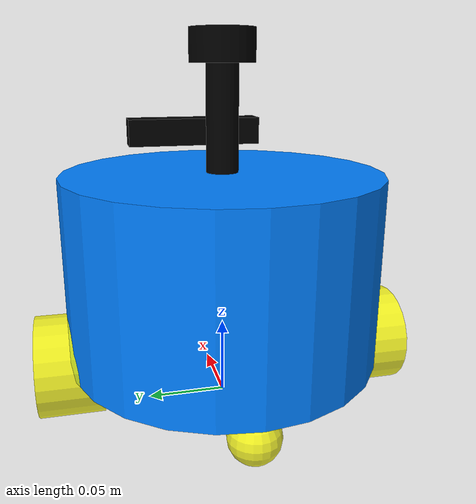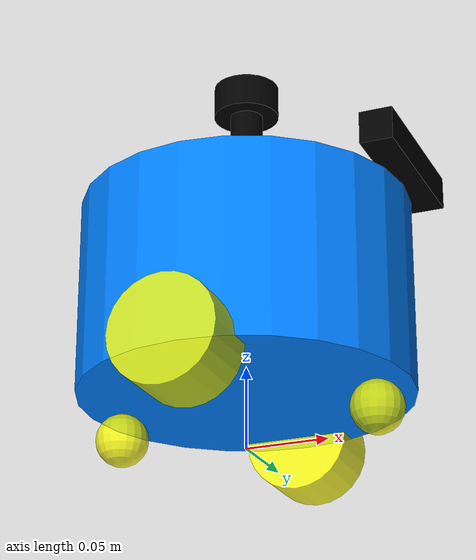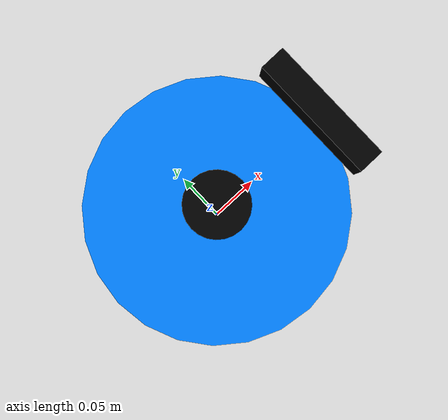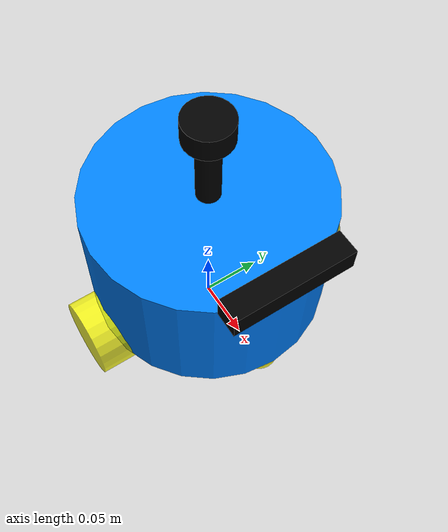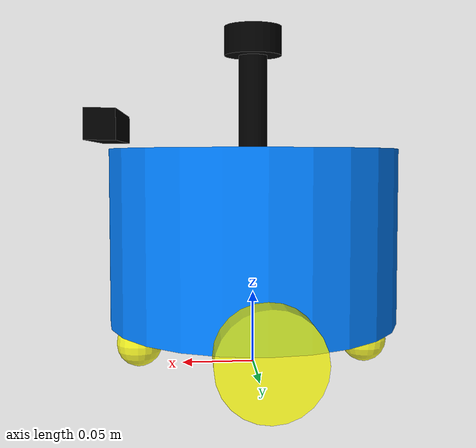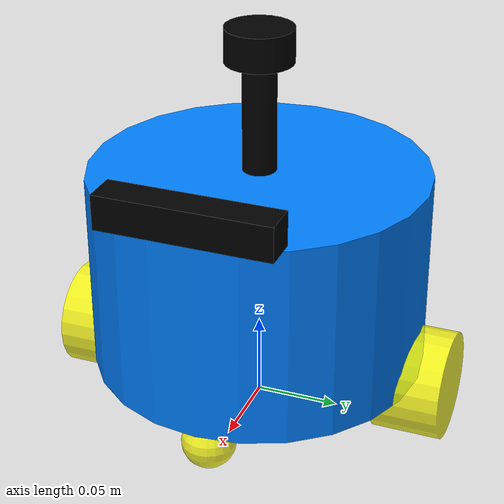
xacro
<?xml version="1.0"?>
<robot xmlns:xacro="http://www.ros.org/wiki/xacro" name="qxwy">
    <xacro:include filename="$(find qxwy_description)/urdf/qxwy/base.urdf.xacro"/>
    <xacro:include filename="$(find qxwy_description)/urdf/qxwy/sensor/imu.urdf.xacro"/>
    <xacro:include filename="$(find qxwy_description)/urdf/qxwy/sensor/camera.urdf.xacro"/>
    <xacro:include filename="$(find qxwy_description)/urdf/qxwy/sensor/laser.urdf.xacro"/>
    <xacro:include filename="$(find qxwy_description)/urdf/qxwy/actuator/wheel.urdf.xacro"/>
    <xacro:include filename="$(find qxwy_description)/urdf/qxwy/actuator/caster.urdf.xacro"/>

    <!-- 引入插件-->
    <xacro:include filename="$(find qxwy_description)/urdf/qxwy/plugins/gazebo_control_plugin.xacro"/>
    <xacro:include filename="$(find qxwy_description)/urdf/qxwy/plugins/gazebo_sensor_plugin.xacro"/>
    <xacro:include filename="$(find qxwy_description)/urdf/qxwy/qxwy.ros2_control.xacro"/>

    <xacro:base_xacro length="0.12" radius="0.10" />
    <xacro:imu_xacro xyz="0.0 0.0 0.02" />
    <xacro:camera_xacro xyz="0.10 0.0 0.075"/>
    <xacro:laser_xacro xyz="0.0 0.0 0.085" />
    <xacro:wheel_xacro wheel_name="left_wheel" xyz = "0.0 0.10 -0.06"/>
    <xacro:wheel_xacro wheel_name="right_wheel" xyz = "0.0 -0.10 -0.06"/>
    <xacro:caster_xacro caster_name="front_caster" xyz = "0.08 0.0 -0.076"/>
    <xacro:caster_xacro caster_name="back_caster" xyz = "-0.08 0.0 -0.076"/>
    <xacro:gazebo_sensor_plugin />
    <xacro:qxwy_ros2_control />

</robot>

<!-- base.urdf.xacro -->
<robot xmlns:xacro="http://www.ros.org/wiki/xacro">
    <xacro:include filename="$(find qxwy_description)/urdf/qxwy/common_inertial.xacro"/>

    <!-- 机器人的身体部分 -->
    <xacro:macro name="base_xacro" params="length radius">
        <link name="base_footprint"/>

        <link name="base_link">
            <visual>
                <origin xyz="0.0 0.0 0.0" rpy="0.0 0.0 0.0"/>
                <geometry>
                    <cylinder radius="${radius}" length="${length}"/>
                </geometry>
                <material name="white">
                    <color rgba="0.0 0.5 1.0 1.0"/>
                </material>
            </visual>

            <collision>
                <origin xyz="0.0 0.0 0.0" rpy="0.0 0.0 0.0"/>
                <geometry>
                    <cylinder radius="${radius}" length="${length}"/>
                </geometry>
                <material name="white">
                    <color rgba="0.0 0.5 1.0 1.0"/>
                </material>
            </collision>

            <xacro:cylinder_inertial mass="1.0" radius="${radius}" height="${length}">
                 <origin xyz="0 0 0" rpy="0 0 0"/>
            </xacro:cylinder_inertial>
        </link>

        <joint name="joint_name" type="fixed">
            <origin xyz="0.0 0.0 ${length/2 + 0.032 - 0.001}" rpy="0.0 0.0 0.0"/>
            <parent link="base_footprint"/>
            <child link="base_link"/>
        </joint>
    </xacro:macro>
</robot>

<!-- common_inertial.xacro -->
<robot xmlns:xacro="http://www.ros.org/wiki/xacro">

  <!-- 圆柱体惯性矩阵宏 -->
  <xacro:macro name="cylinder_inertial" params="mass radius height *origin">
    <inertial>
      <mass value="${mass}"/>
      <xacro:insert_block name="origin"/>
      <inertia ixx="${(1/12) * mass * (3 * radius * radius + height * height)}" ixy="0" ixz="0"
               iyy="${(1/12) * mass * (3 * radius * radius + height * height)}" iyz="0"
               izz="${(1/2) * mass * radius * radius}"/>
    </inertial>
  </xacro:macro>

  <!-- 长方体惯性矩阵宏 -->
  <xacro:macro name="box_inertial" params="mass x y z *origin">
    <inertial>
      <mass value="${mass}"/>
      <xacro:insert_block name="origin"/>
      <inertia ixx="${(1/12) * mass * (y*y + z*z)}" ixy="0" ixz="0"
               iyy="${(1/12) * mass * (x*x + z*z)}" iyz="0"
               izz="${(1/12) * mass * (x*x + y*y)}"/>
    </inertial>
  </xacro:macro>

  <!-- 球体惯性矩阵宏 -->
  <xacro:macro name="sphere_inertial" params="mass radius *origin">
    <inertial>
      <mass value="${mass}"/>
      <xacro:insert_block name="origin"/>
      <inertia ixx="${(2/5) * mass * radius * radius}" ixy="0" ixz="0"
               iyy="${(2/5) * mass * radius * radius}" iyz="0"
               izz="${(2/5) * mass * radius * radius}"/>
    </inertial>
  </xacro:macro>

</robot>

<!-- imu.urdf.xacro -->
<robot xmlns:xacro="http://www.ros.org/wiki/xacro">
    <xacro:include filename="$(find qxwy_description)/urdf/qxwy/common_inertial.xacro"/>

    <xacro:macro name="imu_xacro" params="xyz">
        <link name="imu_link">
            <visual>
                <origin xyz="0.0 0.0 0.0" rpy="0.0 0.0 0.0"/>
                <geometry>
                    <box size="0.02 0.02 0.02"/>
                </geometry>
                <material name="black">
                    <color rgba="0.0 0.0 0.0 0.5"/>
                </material>
            </visual>

            <collision>
                <origin xyz="0.0 0.0 0.0" rpy="0.0 0.0 0.0"/>
                <geometry>
                    <box size="0.02 0.02 0.02"/>
                </geometry>
                <material name="black">
                    <color rgba="0.0 0.0 0.0 0.5"/>
                </material>
            </collision>

            <xacro:box_inertial mass="0.05" x="0.02" y="0.02" z="0.02">
                <origin xyz="0 0 0" rpy="0 0 0"/>
            </xacro:box_inertial>
        </link>

        <joint name="imu_joint" type="fixed">
            <parent link="base_link"/>
            <child link="imu_link"/>
            <origin xyz="${xyz}" rpy="0.0 0.0 0.0"/>
        </joint>
    </xacro:macro>
</robot>

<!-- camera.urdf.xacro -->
<robot xmlns:xacro="http://www.ros.org/wiki/xacro">
    <xacro:include filename="$(find qxwy_description)/urdf/qxwy/common_inertial.xacro"/>

    <xacro:macro name="camera_xacro" params="xyz">
        <link name="camera_link">
            <visual>
                <origin xyz="0.0 0.0 0.0" rpy="0.0 0.0 0.0"/>
                <geometry>
                    <box size="0.02 0.10 0.02"/>
                </geometry>
                <material name="black">
                    <color rgba="0.0 0.0 0.0 1.0"/>
                </material>
            </visual>

            <collision>
                <origin xyz="0.0 0.0 0.0" rpy="0.0 0.0 0.0"/>
                <geometry>
                    <box size="0.02 0.10 0.02"/>
                </geometry>
                <material name="black">
                    <color rgba="0.0 0.0 0.0 0.5"/>
                </material>
            </collision>

             <xacro:box_inertial mass="0.1" x="0.02" y="0.10" z="0.02">
                <origin xyz="0 0 0" rpy="0 0 0"/>
            </xacro:box_inertial>
        </link>

        <link name="camera_optical_link"/>

        <joint name="camera_joint" type="fixed">
            <parent link="base_link"/>
            <child link="camera_link"/>
            <origin xyz="${xyz}" rpy="0.0 0.0 0.0"/>
        </joint>

        <joint name="camera_optical_joint" type="fixed">
            <parent link="camera_link"/>
            <child link="camera_optical_link"/>
            <origin xyz="0 0 0" rpy="${-pi/2} 0.0 ${-pi/2}"/>
        </joint>

        <gazebo reference="camera_link">
            <sensor type="camera" name="camera_name">
                <always_on>true</always_on>
                <update_rate>30.0</update_rate>
                <visualize>true</visualize>
                <topic>camera</topic>

                <camera>
                    <horizontal_fov>1.047</horizontal_fov>
                    <image>
                    <width>320</width>
                    <height>240</height>
                    <format>R8G8B8</format>
                    </image>
                    <clip>
                    <near>0.1</near>
                    <far>1000.0</far>
                    </clip>

                    <rolling_shutter>false</rolling_shutter>

                    <noise>
                    <type>gaussian</type>
                    <mean>0.0</mean>
                    <stddev>0.0</stddev>
                    </noise>

                </camera>
            </sensor>

            <sensor name="depth_camera_name" type="depth_camera">
                <always_on>true</always_on>
                <update_rate>10</update_rate>
                <topic>depth_camera</topic>
                <camera>
                    <horizontal_fov>1.05</horizontal_fov>
                    <image>
                    <width>256</width>
                    <height>256</height>
                    <format>R_FLOAT32</format>
                    </image>
                    <clip>
                    <near>0.1</near>
                    <far>10.0</far>
                    </clip>

                    <depth_camera>
                        <output>depth</output>
                    </depth_camera>
                </camera>
            </sensor>
        </gazebo>
    </xacro:macro>
</robot>

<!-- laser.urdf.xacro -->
<robot xmlns:xacro="http://www.ros.org/wiki/xacro">
    <xacro:include filename="$(find qxwy_description)/urdf/qxwy/common_inertial.xacro"/>

    <xacro:macro name="laser_xacro" params="xyz">
        <link name="laser_cylinder_link">
            <visual>
                <origin xyz="0.0 0.0 0.0" rpy="0.0 0.0 0.0"/>
                <geometry>
                    <cylinder radius="0.01" length="0.1"/>
                </geometry>
                <material name="black">
                    <color rgba="0.0 0.0 0.0 1.0"/>
                </material>
            </visual>

            <collision>
                <origin xyz="0.0 0.0 0.0" rpy="0.0 0.0 0.0"/>
                <geometry>
                    <cylinder radius="0.01" length="0.1"/>
                </geometry>
                <material name="black">
                    <color rgba="0.0 0.0 0.0 1.0"/>
                </material>
            </collision>

        <xacro:cylinder_inertial mass="0.05" radius="0.01" height="0.1">
            <origin xyz="0 0 0" rpy="0 0 0"/>
        </xacro:cylinder_inertial>
        </link>

        <link name="laser_link">
            <visual>
                <origin xyz="0.0 0.0 0.0" rpy="0.0 0.0 0.0"/>
                <geometry>
                    <cylinder radius="0.02" length="0.02"/>
                </geometry>
                <material name="black">
                    <color rgba="0.0 0.0 0.0 1.0"/>
                </material>
            </visual>

            <collision>
                <origin xyz="0.0 0.0 0.0" rpy="0.0 0.0 0.0"/>
                <geometry>
                    <cylinder radius="0.02" length="0.02"/>
                </geometry>
                <material name="black">
                    <color rgba="0.0 0.0 0.0 1.0"/>
                </material>
            </collision>

            <xacro:cylinder_inertial mass="0.10" radius="0.02" height="0.02">
                <origin xyz="0 0 0" rpy="0 0 0"/>
            </xacro:cylinder_inertial>
        </link>

        <joint name="laser_joint" type="fixed">
            <parent link="laser_cylinder_link"/>
            <child link="laser_link"/>
            <origin xyz="0.0 0.0 0.05" rpy="0.0 0.0 0.0"/>
        </joint>

        <joint name="laser_cylinder_joint" type="fixed">
            <parent link="base_link"/>
            <child link="laser_cylinder_link"/>
            <origin xyz="${xyz}" rpy="0.0 0.0 0.0"/>
        </joint>

        <gazebo reference="laser_cylinder_link">
            <material>Gazebo/Black</material>
        </gazebo>

        <!-- 雷达的部件及传感器 -->
        <gazebo reference="laser_link">
            <material>Gazebo/Black</material>
            <sensor name='gpu_lidar' type='gpu_lidar'>
                <always_on>true</always_on>
                <topic>scan</topic>
                <update_rate>20</update_rate>
                <visualize>true</visualize>
                <lidar>
                    <scan>
                        <horizontal>
                            <samples>720</samples>
                            <resolution>1</resolution>
                            <min_angle>-3.14159</min_angle>
                            <max_angle>3.14159</max_angle>
                        </horizontal>

                    <vertical>
                        <samples>16</samples>
                        <resolution>1</resolution>
                        <min_angle>-0.0261799</min_angle>
                        <max_angle>0.0261799</max_angle>
                    </vertical>
                    </scan>

                    <range>
                        <min>0.12</min>
                        <max>8.0</max>
                        <resolution>0.01</resolution>
                    </range>

                    <noise>
                        <type>gaussian</type>
                        <mean>0.0</mean>
                        <stddev>0.01</stddev>
                    </noise>
                </lidar>
            </sensor>
        </gazebo>
    </xacro:macro>
</robot>

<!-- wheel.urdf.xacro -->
<robot xmlns:xacro="http://www.ros.org/wiki/xacro">
    <xacro:include filename="$(find qxwy_description)/urdf/qxwy/common_inertial.xacro"/>

    <xacro:macro name="wheel_xacro" params="wheel_name xyz">
        <link name="${wheel_name}_link">
            <visual>
                <origin xyz="0.0 0.0 0.0" rpy="1.57079 0.0 0.0"/>
                <geometry>
                    <cylinder radius="0.032" length="0.04"/>
                </geometry>
                <material name="yellow">
                    <color rgba="1.0 1.0 0.0 0.8"/>
                </material>
            </visual>

            <collision>
                <origin xyz="0.0 0.0 0.0" rpy="1.57079 0.0 0.0"/>
                <geometry>
                    <cylinder radius="0.032" length="0.04"/>
                </geometry>
                <material name="yellow">
                    <color rgba="1.0 1.0 0.0 0.8"/>
                </material>
            </collision>
            <xacro:cylinder_inertial mass="0.05" radius="0.032" height="0.04">
                <origin xyz="0 0 0" rpy="0 0 0"/>
            </xacro:cylinder_inertial>
        </link>

        <gazebo reference="${wheel_name}_link">
            <mu1 value="20.0" />
            <mu2 value="20.0" />
            <kp value="100000000.0" />
            <kd value="1.0" />
        </gazebo>

        <joint name="${wheel_name}_joint" type="continuous">
            <parent link="base_link"/>
            <child link="${wheel_name}_link"/>
            <origin xyz="${xyz}" rpy="0.0 0.0 0.0"/>
            <axis xyz="0.0 1.0 0.0"/>
        </joint>
    </xacro:macro>
</robot>

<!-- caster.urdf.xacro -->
<robot xmlns:xacro="http://www.ros.org/wiki/xacro">
    <xacro:include filename="$(find qxwy_description)/urdf/qxwy/common_inertial.xacro"/>
    <!-- 万向轮 -->
    <xacro:macro name="caster_xacro" params="caster_name xyz">
        <link name="${caster_name}_link">
            <visual>
                <origin xyz="0.0 0.0 0.0" rpy="0 0.0 0.0"/>
                <geometry>
                    <sphere radius="0.016"/>
                </geometry>
                <material name="yellow">
                    <color rgba="1.0 1.0 0.0 0.8"/>
                </material>
            </visual>

            <collision>
                <origin xyz="0.0 0.0 0.0" rpy="0 0.0 0.0"/>
                <geometry>
                    <sphere radius="0.016"/>
                </geometry>
                <material name="yellow">
                    <color rgba="1.0 1.0 0.0 0.8"/>
                </material>
            </collision>
            <xacro:sphere_inertial mass="0.05" radius="0.016">
                <origin xyz="0 0 0" rpy="0 0 0"/>
            </xacro:sphere_inertial>
        </link>

        <joint name="${caster_name}_joint" type="fixed">
            <parent link="base_link"/>
            <child link="${caster_name}_link"/>
            <origin xyz="${xyz}" rpy="0.0 0.0 0.0"/>
        </joint>

        <gazebo reference="${caster_name}_link">
            <mu1 value="0.0" />
            <mu2 value="0.0" />
            <kp value="100000000.0" />
            <kd value="1.0" />
        </gazebo>

    </xacro:macro>
</robot>
